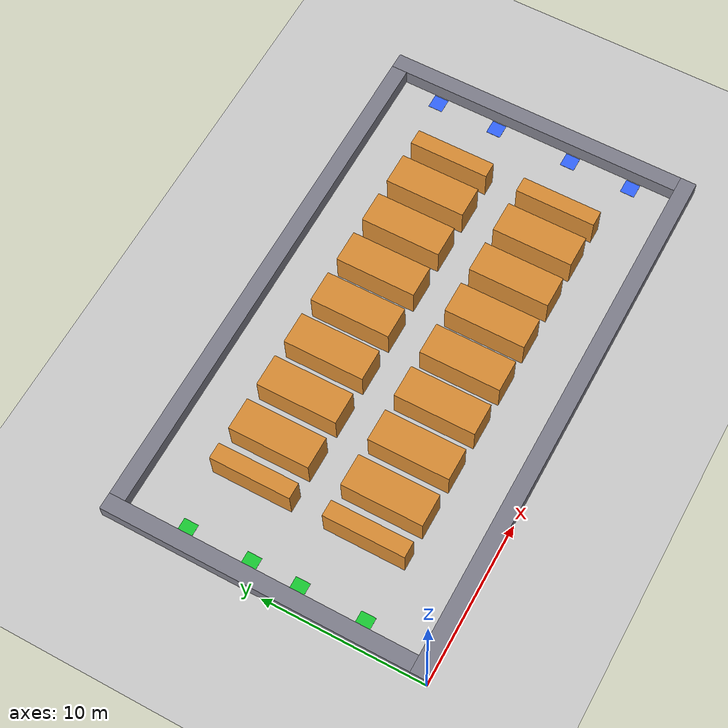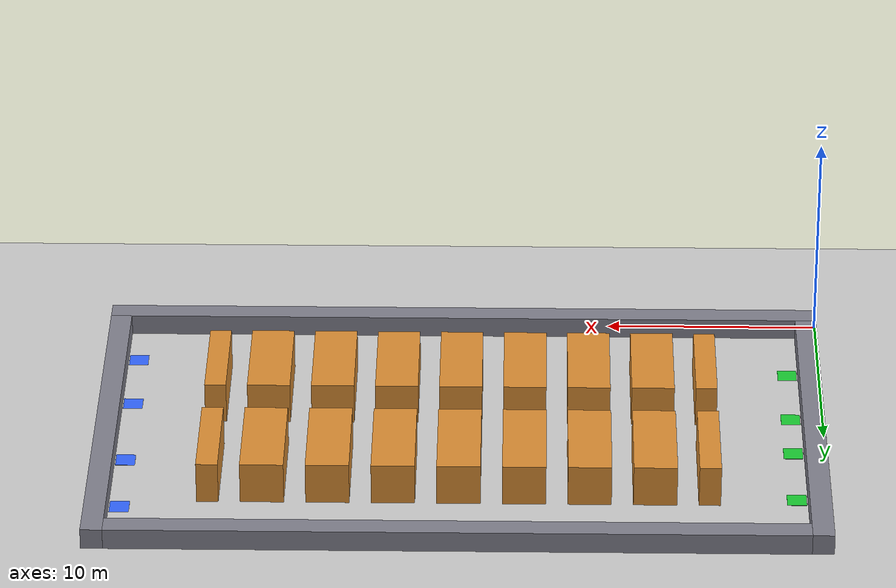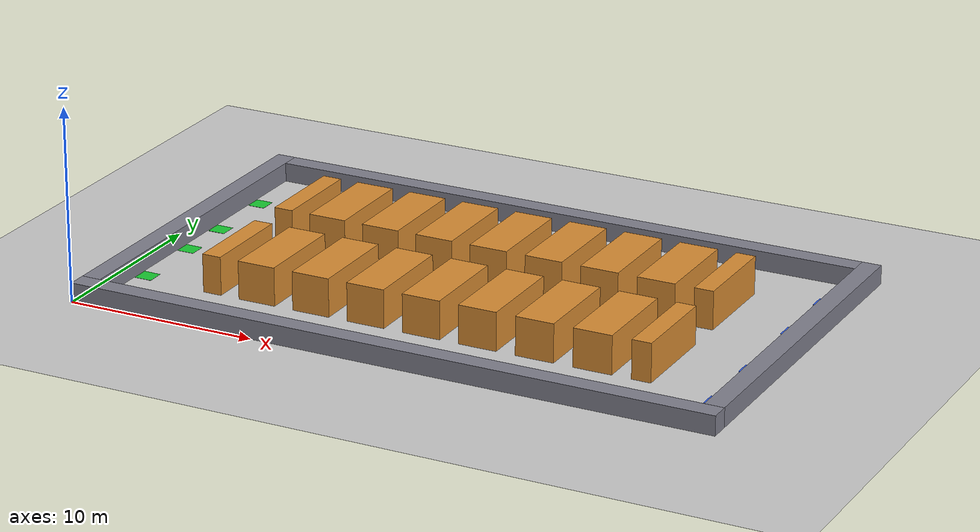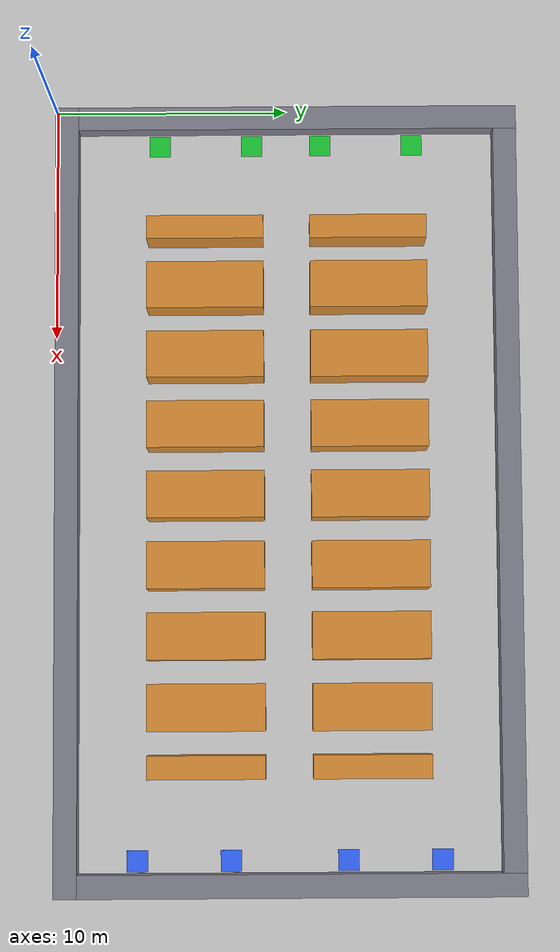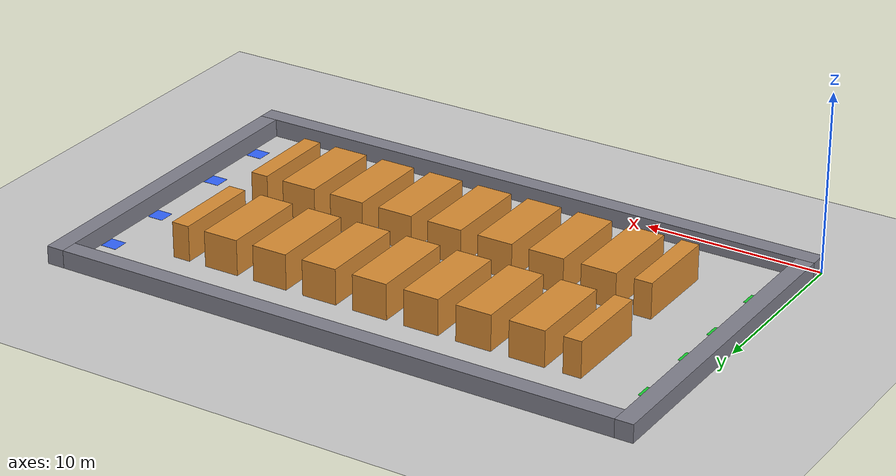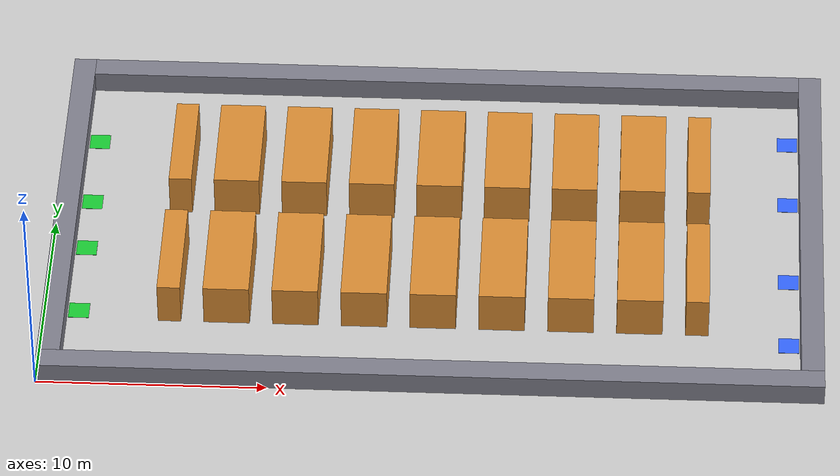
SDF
<?xml version="1.0"?>
<!-- Generated by swarmx_core.warehouse -- do not edit by hand. -->
<sdf version="1.9">
  <world name="swarmx_warehouse">
    <physics name="1ms" type="ignored">
      <max_step_size>0.004</max_step_size>
      <real_time_factor>1.0</real_time_factor>
    </physics>
    <plugin filename="gz-sim-physics-system" name="gz::sim::systems::Physics"/>
    <plugin filename="gz-sim-user-commands-system" name="gz::sim::systems::UserCommands"/>
    <plugin filename="gz-sim-scene-broadcaster-system" name="gz::sim::systems::SceneBroadcaster"/>
    <plugin filename="gz-sim-sensors-system" name="gz::sim::systems::Sensors">
      <render_engine>ogre2</render_engine>
    </plugin>
    <plugin filename="gz-sim-imu-system" name="gz::sim::systems::Imu"/>
    <light type="directional" name="sun">
      <cast_shadows>true</cast_shadows>
      <pose>0 0 10 0 0 0</pose>
      <diffuse>0.8 0.8 0.8 1</diffuse>
      <specular>0.2 0.2 0.2 1</specular>
      <direction>-0.5 0.1 -0.9</direction>
    </light>
    <model name="ground_plane">
      <static>true</static>
      <link name="link">
        <collision name="c"><geometry><plane><normal>0 0 1</normal><size>200 200</size></plane></geometry></collision>
        <visual name="v"><geometry><plane><normal>0 0 1</normal><size>200 200</size></plane></geometry>
          <material><ambient>0.8 0.8 0.8 1</ambient><diffuse>0.8 0.8 0.8 1</diffuse></material></visual>
      </link>
    </model>
    <model name="wall_0">
      <static>true</static>
      <pose>17.000 0.500 0.500 0 0 0</pose>
      <link name="link">
        <collision name="c"><geometry><box><size>34 1 1.0</size></box></geometry></collision>
        <visual name="v"><geometry><box><size>34 1 1.0</size></box></geometry>
          <material><ambient>0.5 0.5 0.55 1</ambient><diffuse>0.5 0.5 0.55 1</diffuse></material></visual>
      </link>
    </model>
    <model name="wall_1">
      <static>true</static>
      <pose>0.500 10.500 0.500 0 0 0</pose>
      <link name="link">
        <collision name="c"><geometry><box><size>1 19 1.0</size></box></geometry></collision>
        <visual name="v"><geometry><box><size>1 19 1.0</size></box></geometry>
          <material><ambient>0.5 0.5 0.55 1</ambient><diffuse>0.5 0.5 0.55 1</diffuse></material></visual>
      </link>
    </model>
    <model name="wall_2">
      <static>true</static>
      <pose>33.500 10.500 0.500 0 0 0</pose>
      <link name="link">
        <collision name="c"><geometry><box><size>1 19 1.0</size></box></geometry></collision>
        <visual name="v"><geometry><box><size>1 19 1.0</size></box></geometry>
          <material><ambient>0.5 0.5 0.55 1</ambient><diffuse>0.5 0.5 0.55 1</diffuse></material></visual>
      </link>
    </model>
    <model name="shelf_3">
      <static>true</static>
      <pose>5.500 6.500 1.000 0 0 0</pose>
      <link name="link">
        <collision name="c"><geometry><box><size>1 5 2.0</size></box></geometry></collision>
        <visual name="v"><geometry><box><size>1 5 2.0</size></box></geometry>
          <material><ambient>0.85 0.55 0.2 1</ambient><diffuse>0.85 0.55 0.2 1</diffuse></material></visual>
      </link>
    </model>
    <model name="shelf_4">
      <static>true</static>
      <pose>8.000 6.500 1.000 0 0 0</pose>
      <link name="link">
        <collision name="c"><geometry><box><size>2 5 2.0</size></box></geometry></collision>
        <visual name="v"><geometry><box><size>2 5 2.0</size></box></geometry>
          <material><ambient>0.85 0.55 0.2 1</ambient><diffuse>0.85 0.55 0.2 1</diffuse></material></visual>
      </link>
    </model>
    <model name="shelf_5">
      <static>true</static>
      <pose>11.000 6.500 1.000 0 0 0</pose>
      <link name="link">
        <collision name="c"><geometry><box><size>2 5 2.0</size></box></geometry></collision>
        <visual name="v"><geometry><box><size>2 5 2.0</size></box></geometry>
          <material><ambient>0.85 0.55 0.2 1</ambient><diffuse>0.85 0.55 0.2 1</diffuse></material></visual>
      </link>
    </model>
    <model name="shelf_6">
      <static>true</static>
      <pose>14.000 6.500 1.000 0 0 0</pose>
      <link name="link">
        <collision name="c"><geometry><box><size>2 5 2.0</size></box></geometry></collision>
        <visual name="v"><geometry><box><size>2 5 2.0</size></box></geometry>
          <material><ambient>0.85 0.55 0.2 1</ambient><diffuse>0.85 0.55 0.2 1</diffuse></material></visual>
      </link>
    </model>
    <model name="shelf_7">
      <static>true</static>
      <pose>17.000 6.500 1.000 0 0 0</pose>
      <link name="link">
        <collision name="c"><geometry><box><size>2 5 2.0</size></box></geometry></collision>
        <visual name="v"><geometry><box><size>2 5 2.0</size></box></geometry>
          <material><ambient>0.85 0.55 0.2 1</ambient><diffuse>0.85 0.55 0.2 1</diffuse></material></visual>
      </link>
    </model>
    <model name="shelf_8">
      <static>true</static>
      <pose>20.000 6.500 1.000 0 0 0</pose>
      <link name="link">
        <collision name="c"><geometry><box><size>2 5 2.0</size></box></geometry></collision>
        <visual name="v"><geometry><box><size>2 5 2.0</size></box></geometry>
          <material><ambient>0.85 0.55 0.2 1</ambient><diffuse>0.85 0.55 0.2 1</diffuse></material></visual>
      </link>
    </model>
    <model name="shelf_9">
      <static>true</static>
      <pose>23.000 6.500 1.000 0 0 0</pose>
      <link name="link">
        <collision name="c"><geometry><box><size>2 5 2.0</size></box></geometry></collision>
        <visual name="v"><geometry><box><size>2 5 2.0</size></box></geometry>
          <material><ambient>0.85 0.55 0.2 1</ambient><diffuse>0.85 0.55 0.2 1</diffuse></material></visual>
      </link>
    </model>
    <model name="shelf_10">
      <static>true</static>
      <pose>26.000 6.500 1.000 0 0 0</pose>
      <link name="link">
        <collision name="c"><geometry><box><size>2 5 2.0</size></box></geometry></collision>
        <visual name="v"><geometry><box><size>2 5 2.0</size></box></geometry>
          <material><ambient>0.85 0.55 0.2 1</ambient><diffuse>0.85 0.55 0.2 1</diffuse></material></visual>
      </link>
    </model>
    <model name="shelf_11">
      <static>true</static>
      <pose>28.500 6.500 1.000 0 0 0</pose>
      <link name="link">
        <collision name="c"><geometry><box><size>1 5 2.0</size></box></geometry></collision>
        <visual name="v"><geometry><box><size>1 5 2.0</size></box></geometry>
          <material><ambient>0.85 0.55 0.2 1</ambient><diffuse>0.85 0.55 0.2 1</diffuse></material></visual>
      </link>
    </model>
    <model name="shelf_12">
      <static>true</static>
      <pose>5.500 13.500 1.000 0 0 0</pose>
      <link name="link">
        <collision name="c"><geometry><box><size>1 5 2.0</size></box></geometry></collision>
        <visual name="v"><geometry><box><size>1 5 2.0</size></box></geometry>
          <material><ambient>0.85 0.55 0.2 1</ambient><diffuse>0.85 0.55 0.2 1</diffuse></material></visual>
      </link>
    </model>
    <model name="shelf_13">
      <static>true</static>
      <pose>8.000 13.500 1.000 0 0 0</pose>
      <link name="link">
        <collision name="c"><geometry><box><size>2 5 2.0</size></box></geometry></collision>
        <visual name="v"><geometry><box><size>2 5 2.0</size></box></geometry>
          <material><ambient>0.85 0.55 0.2 1</ambient><diffuse>0.85 0.55 0.2 1</diffuse></material></visual>
      </link>
    </model>
    <model name="shelf_14">
      <static>true</static>
      <pose>11.000 13.500 1.000 0 0 0</pose>
      <link name="link">
        <collision name="c"><geometry><box><size>2 5 2.0</size></box></geometry></collision>
        <visual name="v"><geometry><box><size>2 5 2.0</size></box></geometry>
          <material><ambient>0.85 0.55 0.2 1</ambient><diffuse>0.85 0.55 0.2 1</diffuse></material></visual>
      </link>
    </model>
    <model name="shelf_15">
      <static>true</static>
      <pose>14.000 13.500 1.000 0 0 0</pose>
      <link name="link">
        <collision name="c"><geometry><box><size>2 5 2.0</size></box></geometry></collision>
        <visual name="v"><geometry><box><size>2 5 2.0</size></box></geometry>
          <material><ambient>0.85 0.55 0.2 1</ambient><diffuse>0.85 0.55 0.2 1</diffuse></material></visual>
      </link>
    </model>
    <model name="shelf_16">
      <static>true</static>
      <pose>17.000 13.500 1.000 0 0 0</pose>
      <link name="link">
        <collision name="c"><geometry><box><size>2 5 2.0</size></box></geometry></collision>
        <visual name="v"><geometry><box><size>2 5 2.0</size></box></geometry>
          <material><ambient>0.85 0.55 0.2 1</ambient><diffuse>0.85 0.55 0.2 1</diffuse></material></visual>
      </link>
    </model>
    <model name="shelf_17">
      <static>true</static>
      <pose>20.000 13.500 1.000 0 0 0</pose>
      <link name="link">
        <collision name="c"><geometry><box><size>2 5 2.0</size></box></geometry></collision>
        <visual name="v"><geometry><box><size>2 5 2.0</size></box></geometry>
          <material><ambient>0.85 0.55 0.2 1</ambient><diffuse>0.85 0.55 0.2 1</diffuse></material></visual>
      </link>
    </model>
    <model name="shelf_18">
      <static>true</static>
      <pose>23.000 13.500 1.000 0 0 0</pose>
      <link name="link">
        <collision name="c"><geometry><box><size>2 5 2.0</size></box></geometry></collision>
        <visual name="v"><geometry><box><size>2 5 2.0</size></box></geometry>
          <material><ambient>0.85 0.55 0.2 1</ambient><diffuse>0.85 0.55 0.2 1</diffuse></material></visual>
      </link>
    </model>
    <model name="shelf_19">
      <static>true</static>
      <pose>26.000 13.500 1.000 0 0 0</pose>
      <link name="link">
        <collision name="c"><geometry><box><size>2 5 2.0</size></box></geometry></collision>
        <visual name="v"><geometry><box><size>2 5 2.0</size></box></geometry>
          <material><ambient>0.85 0.55 0.2 1</ambient><diffuse>0.85 0.55 0.2 1</diffuse></material></visual>
      </link>
    </model>
    <model name="shelf_20">
      <static>true</static>
      <pose>28.500 13.500 1.000 0 0 0</pose>
      <link name="link">
        <collision name="c"><geometry><box><size>1 5 2.0</size></box></geometry></collision>
        <visual name="v"><geometry><box><size>1 5 2.0</size></box></geometry>
          <material><ambient>0.85 0.55 0.2 1</ambient><diffuse>0.85 0.55 0.2 1</diffuse></material></visual>
      </link>
    </model>
    <model name="wall_21">
      <static>true</static>
      <pose>17.000 19.500 0.500 0 0 0</pose>
      <link name="link">
        <collision name="c"><geometry><box><size>32 1 1.0</size></box></geometry></collision>
        <visual name="v"><geometry><box><size>32 1 1.0</size></box></geometry>
          <material><ambient>0.5 0.5 0.55 1</ambient><diffuse>0.5 0.5 0.55 1</diffuse></material></visual>
      </link>
    </model>
    <model name="dropoff_0">
      <static>true</static>
      <pose>1.5 4.5 0.005 0 0 0</pose>
      <link name="link"><visual name="v"><geometry><box><size>0.9 0.9 0.01</size></box></geometry>
        <material><ambient>0.1 0.8 0.2 1</ambient><diffuse>0.1 0.8 0.2 1</diffuse></material></visual></link>
    </model>
    <model name="dropoff_1">
      <static>true</static>
      <pose>1.5 8.5 0.005 0 0 0</pose>
      <link name="link"><visual name="v"><geometry><box><size>0.9 0.9 0.01</size></box></geometry>
        <material><ambient>0.1 0.8 0.2 1</ambient><diffuse>0.1 0.8 0.2 1</diffuse></material></visual></link>
    </model>
    <model name="dropoff_2">
      <static>true</static>
      <pose>1.5 11.5 0.005 0 0 0</pose>
      <link name="link"><visual name="v"><geometry><box><size>0.9 0.9 0.01</size></box></geometry>
        <material><ambient>0.1 0.8 0.2 1</ambient><diffuse>0.1 0.8 0.2 1</diffuse></material></visual></link>
    </model>
    <model name="dropoff_3">
      <static>true</static>
      <pose>1.5 15.5 0.005 0 0 0</pose>
      <link name="link"><visual name="v"><geometry><box><size>0.9 0.9 0.01</size></box></geometry>
        <material><ambient>0.1 0.8 0.2 1</ambient><diffuse>0.1 0.8 0.2 1</diffuse></material></visual></link>
    </model>
    <model name="charger_0">
      <static>true</static>
      <pose>32.5 3.5 0.005 0 0 0</pose>
      <link name="link"><visual name="v"><geometry><box><size>0.9 0.9 0.01</size></box></geometry>
        <material><ambient>0.2 0.4 1.0 1</ambient><diffuse>0.2 0.4 1.0 1</diffuse></material></visual></link>
    </model>
    <model name="charger_1">
      <static>true</static>
      <pose>32.5 7.5 0.005 0 0 0</pose>
      <link name="link"><visual name="v"><geometry><box><size>0.9 0.9 0.01</size></box></geometry>
        <material><ambient>0.2 0.4 1.0 1</ambient><diffuse>0.2 0.4 1.0 1</diffuse></material></visual></link>
    </model>
    <model name="charger_2">
      <static>true</static>
      <pose>32.5 12.5 0.005 0 0 0</pose>
      <link name="link"><visual name="v"><geometry><box><size>0.9 0.9 0.01</size></box></geometry>
        <material><ambient>0.2 0.4 1.0 1</ambient><diffuse>0.2 0.4 1.0 1</diffuse></material></visual></link>
    </model>
    <model name="charger_3">
      <static>true</static>
      <pose>32.5 16.5 0.005 0 0 0</pose>
      <link name="link"><visual name="v"><geometry><box><size>0.9 0.9 0.01</size></box></geometry>
        <material><ambient>0.2 0.4 1.0 1</ambient><diffuse>0.2 0.4 1.0 1</diffuse></material></visual></link>
    </model>
  </world>
</sdf>
